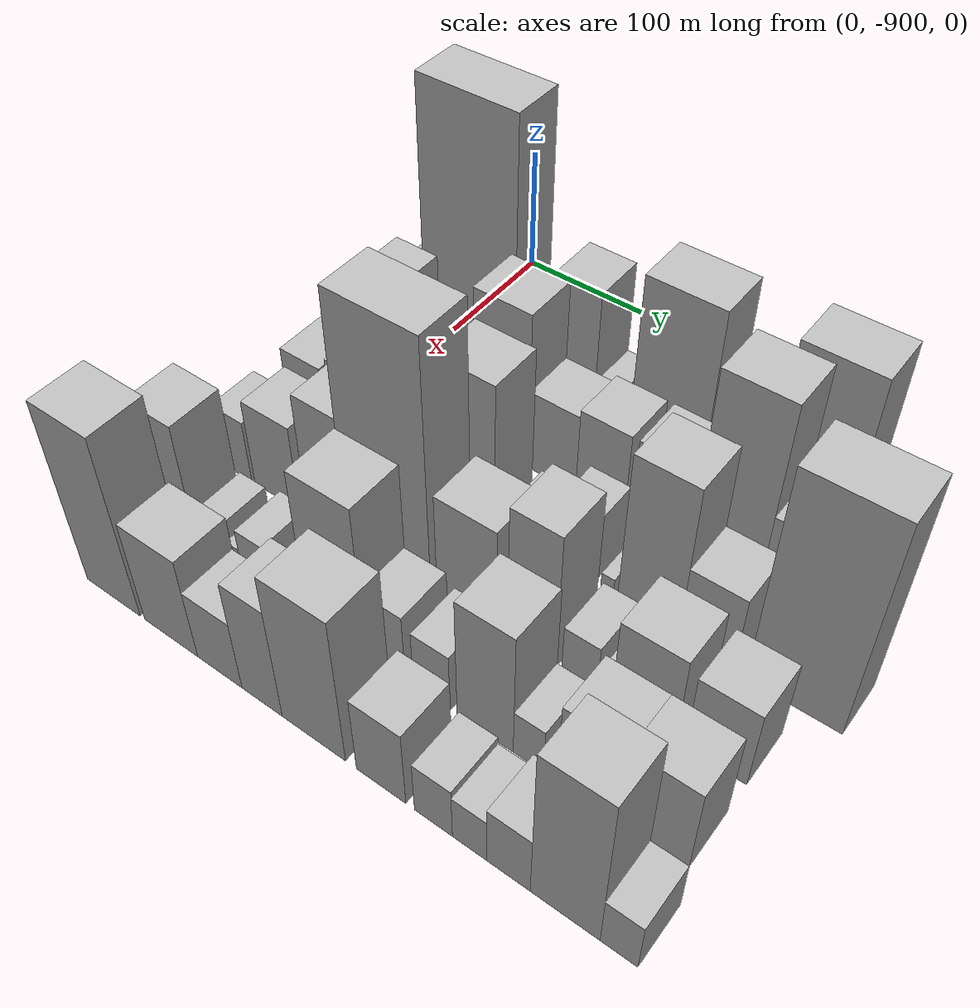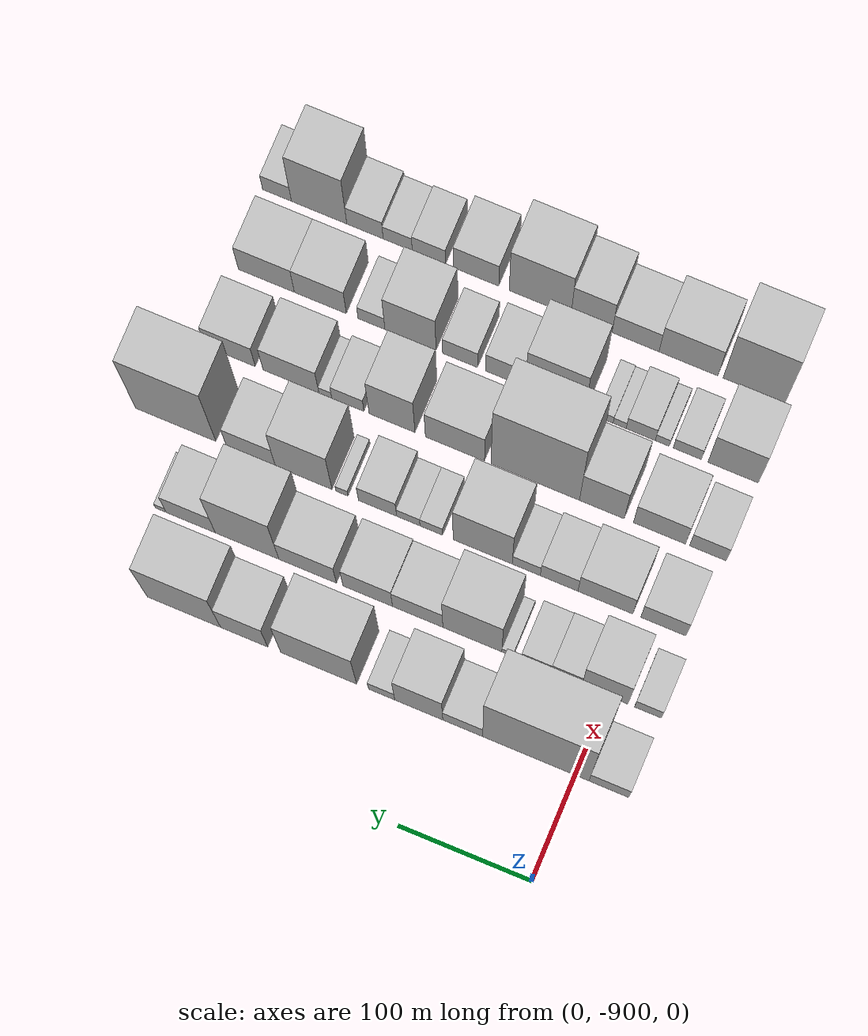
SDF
<sdf version="1.6">
 <world name="default">
  <model name="building_1">
   <static>1</static>
   <pose>100.0000 -924.9908 0 0.000000 0.000000 0.000000</pose>
   <link name="link">
    <pose>0 0 25.50 0 0 0</pose>
    <collision name="collision"><geometry><box><size>40.0000 30.0183 51.0000</size></box></geometry></collision>
    <visual name="visual">
     <cast_shadows>0</cast_shadows>
     <geometry><box><size>40.0000 30.0183 51.0000</size></box></geometry>
     <material>
      <script>
       <uri>model://HANNAS_wall/materials/scripts</uri>
       <uri>model://HANNAS_wall/materials/textures</uri>
       <name>vrc/HANNAS_wall</name>
      </script>
     </material>
    </visual>
   </link>
  </model>
  <model name="building_2">
   <static>1</static>
   <pose>100.0000 -869.9235 0 0.000000 0.000000 0.000000</pose>
   <link name="link">
    <pose>0 0 109.50 0 0 0</pose>
    <collision name="collision"><geometry><box><size>40.0000 80.1163 219.0000</size></box></geometry></collision>
    <visual name="visual">
     <cast_shadows>0</cast_shadows>
     <geometry><box><size>40.0000 80.1163 219.0000</size></box></geometry>
     <material>
      <script>
       <uri>model://HANNAS_wall/materials/scripts</uri>
       <uri>model://HANNAS_wall/materials/textures</uri>
       <name>vrc/HANNAS_wall</name>
      </script>
     </material>
    </visual>
   </link>
  </model>
  <model name="building_3">
   <static>1</static>
   <pose>100.0000 -814.7884 0 0.000000 0.000000 0.000000</pose>
   <link name="link">
    <pose>0 0 25.50 0 0 0</pose>
    <collision name="collision"><geometry><box><size>40.0000 30.1539 51.0000</size></box></geometry></collision>
    <visual name="visual">
     <cast_shadows>0</cast_shadows>
     <geometry><box><size>40.0000 30.1539 51.0000</size></box></geometry>
     <material>
      <script>
       <uri>model://HANNAS_wall/materials/scripts</uri>
       <uri>model://HANNAS_wall/materials/textures</uri>
       <name>vrc/HANNAS_wall</name>
      </script>
     </material>
    </visual>
   </link>
  </model>
  <model name="building_4">
   <static>1</static>
   <pose>100.0000 -781.5374 0 0.000000 0.000000 0.000000</pose>
   <link name="link">
    <pose>0 0 57.00 0 0 0</pose>
    <collision name="collision"><geometry><box><size>40.0000 36.3481 114.0000</size></box></geometry></collision>
    <visual name="visual">
     <cast_shadows>0</cast_shadows>
     <geometry><box><size>40.0000 36.3481 114.0000</size></box></geometry>
     <material>
      <script>
       <uri>model://HANNAS_wall/materials/scripts</uri>
       <uri>model://HANNAS_wall/materials/textures</uri>
       <name>vrc/HANNAS_wall</name>
      </script>
     </material>
    </visual>
   </link>
  </model>
  <model name="building_5">
   <static>1</static>
   <pose>100.0000 -753.4483 0 0.000000 0.000000 0.000000</pose>
   <link name="link">
    <pose>0 0 19.50 0 0 0</pose>
    <collision name="collision"><geometry><box><size>40.0000 19.8302 39.0000</size></box></geometry></collision>
    <visual name="visual">
     <cast_shadows>0</cast_shadows>
     <geometry><box><size>40.0000 19.8302 39.0000</size></box></geometry>
     <material>
      <script>
       <uri>model://HANNAS_wall/materials/scripts</uri>
       <uri>model://HANNAS_wall/materials/textures</uri>
       <name>vrc/HANNAS_wall</name>
      </script>
     </material>
    </visual>
   </link>
  </model>
  <model name="building_6">
   <static>1</static>
   <pose>100.0000 -705.7609 0 0.000000 0.000000 0.000000</pose>
   <link name="link">
    <pose>0 0 72.00 0 0 0</pose>
    <collision name="collision"><geometry><box><size>40.0000 57.5447 144.0000</size></box></geometry></collision>
    <visual name="visual">
     <cast_shadows>0</cast_shadows>
     <geometry><box><size>40.0000 57.5447 144.0000</size></box></geometry>
     <material>
      <script>
       <uri>model://HANNAS_wall/materials/scripts</uri>
       <uri>model://HANNAS_wall/materials/textures</uri>
       <name>vrc/HANNAS_wall</name>
      </script>
     </material>
    </visual>
   </link>
  </model>
  <model name="building_7">
   <static>1</static>
   <pose>100.0000 -649.0936 0 0.000000 0.000000 0.000000</pose>
   <link name="link">
    <pose>0 0 48.00 0 0 0</pose>
    <collision name="collision"><geometry><box><size>40.0000 35.7898 96.0000</size></box></geometry></collision>
    <visual name="visual">
     <cast_shadows>0</cast_shadows>
     <geometry><box><size>40.0000 35.7898 96.0000</size></box></geometry>
     <material>
      <script>
       <uri>model://HANNAS_wall/materials/scripts</uri>
       <uri>model://HANNAS_wall/materials/textures</uri>
       <name>vrc/HANNAS_wall</name>
      </script>
     </material>
    </visual>
   </link>
  </model>
  <model name="building_8">
   <static>1</static>
   <pose>100.0000 -603.2705 0 0.000000 0.000000 0.000000</pose>
   <link name="link">
    <pose>0 0 73.50 0 0 0</pose>
    <collision name="collision"><geometry><box><size>40.0000 55.8565 147.0000</size></box></geometry></collision>
    <visual name="visual">
     <cast_shadows>0</cast_shadows>
     <geometry><box><size>40.0000 55.8565 147.0000</size></box></geometry>
     <material>
      <script>
       <uri>model://HANNAS_wall/materials/scripts</uri>
       <uri>model://HANNAS_wall/materials/textures</uri>
       <name>vrc/HANNAS_wall</name>
      </script>
     </material>
    </visual>
   </link>
  </model>
  <model name="building_54">
   <static>1</static>
   <pose>160.0000 -929.8388 0 0.000000 0.000000 0.000000</pose>
   <link name="link">
    <pose>0 0 19.50 0 0 0</pose>
    <collision name="collision"><geometry><box><size>40.0000 20.3223 39.0000</size></box></geometry></collision>
    <visual name="visual">
     <cast_shadows>0</cast_shadows>
     <geometry><box><size>40.0000 20.3223 39.0000</size></box></geometry>
     <material>
      <script>
       <uri>model://HANNAS_wall/materials/scripts</uri>
       <uri>model://HANNAS_wall/materials/textures</uri>
       <name>vrc/HANNAS_wall</name>
      </script>
     </material>
    </visual>
   </link>
  </model>
  <model name="building_55">
   <static>1</static>
   <pose>160.0000 -897.3813 0 0.000000 0.000000 0.000000</pose>
   <link name="link">
    <pose>0 0 51.00 0 0 0</pose>
    <collision name="collision"><geometry><box><size>40.0000 34.5927 102.0000</size></box></geometry></collision>
    <visual name="visual">
     <cast_shadows>0</cast_shadows>
     <geometry><box><size>40.0000 34.5927 102.0000</size></box></geometry>
     <material>
      <script>
       <uri>model://HANNAS_wall/materials/scripts</uri>
       <uri>model://HANNAS_wall/materials/textures</uri>
       <name>vrc/HANNAS_wall</name>
      </script>
     </material>
    </visual>
   </link>
  </model>
  <model name="building_56">
   <static>1</static>
   <pose>160.0000 -868.4356 0 0.000000 0.000000 0.000000</pose>
   <link name="link">
    <pose>0 0 21.00 0 0 0</pose>
    <collision name="collision"><geometry><box><size>40.0000 23.2988 42.0000</size></box></geometry></collision>
    <visual name="visual">
     <cast_shadows>0</cast_shadows>
     <geometry><box><size>40.0000 23.2988 42.0000</size></box></geometry>
     <material>
      <script>
       <uri>model://HANNAS_wall/materials/scripts</uri>
       <uri>model://HANNAS_wall/materials/textures</uri>
       <name>vrc/HANNAS_wall</name>
      </script>
     </material>
    </visual>
   </link>
  </model>
  <model name="building_57">
   <static>1</static>
   <pose>160.0000 -845.4090 0 0.000000 0.000000 0.000000</pose>
   <link name="link">
    <pose>0 0 19.50 0 0 0</pose>
    <collision name="collision"><geometry><box><size>40.0000 22.7543 39.0000</size></box></geometry></collision>
    <visual name="visual">
     <cast_shadows>0</cast_shadows>
     <geometry><box><size>40.0000 22.7543 39.0000</size></box></geometry>
     <material>
      <script>
       <uri>model://HANNAS_wall/materials/scripts</uri>
       <uri>model://HANNAS_wall/materials/textures</uri>
       <name>vrc/HANNAS_wall</name>
      </script>
     </material>
    </visual>
   </link>
  </model>
  <model name="building_58">
   <static>1</static>
   <pose>160.0000 -823.6726 0 0.000000 0.000000 0.000000</pose>
   <link name="link">
    <pose>0 0 9.00 0 0 0</pose>
    <collision name="collision"><geometry><box><size>40.0000 8.7183 18.0000</size></box></geometry></collision>
    <visual name="visual">
     <cast_shadows>0</cast_shadows>
     <geometry><box><size>40.0000 8.7183 18.0000</size></box></geometry>
     <material>
      <script>
       <uri>model://HANNAS_wall/materials/scripts</uri>
       <uri>model://HANNAS_wall/materials/textures</uri>
       <name>vrc/HANNAS_wall</name>
      </script>
     </material>
    </visual>
   </link>
  </model>
  <model name="building_59">
   <static>1</static>
   <pose>160.0000 -796.9942 0 0.000000 0.000000 0.000000</pose>
   <link name="link">
    <pose>0 0 66.00 0 0 0</pose>
    <collision name="collision"><geometry><box><size>40.0000 44.6387 132.0000</size></box></geometry></collision>
    <visual name="visual">
     <cast_shadows>0</cast_shadows>
     <geometry><box><size>40.0000 44.6387 132.0000</size></box></geometry>
     <material>
      <script>
       <uri>model://HANNAS_wall/materials/scripts</uri>
       <uri>model://HANNAS_wall/materials/textures</uri>
       <name>vrc/HANNAS_wall</name>
      </script>
     </material>
    </visual>
   </link>
  </model>
  <model name="building_60">
   <static>1</static>
   <pose>160.0000 -755.5623 0 0.000000 0.000000 0.000000</pose>
   <link name="link">
    <pose>0 0 34.50 0 0 0</pose>
    <collision name="collision"><geometry><box><size>40.0000 38.2251 69.0000</size></box></geometry></collision>
    <visual name="visual">
     <cast_shadows>0</cast_shadows>
     <geometry><box><size>40.0000 38.2251 69.0000</size></box></geometry>
     <material>
      <script>
       <uri>model://HANNAS_wall/materials/scripts</uri>
       <uri>model://HANNAS_wall/materials/textures</uri>
       <name>vrc/HANNAS_wall</name>
      </script>
     </material>
    </visual>
   </link>
  </model>
  <model name="building_61">
   <static>1</static>
   <pose>160.0000 -717.5969 0 0.000000 0.000000 0.000000</pose>
   <link name="link">
    <pose>0 0 37.50 0 0 0</pose>
    <collision name="collision"><geometry><box><size>40.0000 37.7058 75.0000</size></box></geometry></collision>
    <visual name="visual">
     <cast_shadows>0</cast_shadows>
     <geometry><box><size>40.0000 37.7058 75.0000</size></box></geometry>
     <material>
      <script>
       <uri>model://HANNAS_wall/materials/scripts</uri>
       <uri>model://HANNAS_wall/materials/textures</uri>
       <name>vrc/HANNAS_wall</name>
      </script>
     </material>
    </visual>
   </link>
  </model>
  <model name="building_62">
   <static>1</static>
   <pose>160.0000 -671.8266 0 0.000000 0.000000 0.000000</pose>
   <link name="link">
    <pose>0 0 37.50 0 0 0</pose>
    <collision name="collision"><geometry><box><size>40.0000 43.8346 75.0000</size></box></geometry></collision>
    <visual name="visual">
     <cast_shadows>0</cast_shadows>
     <geometry><box><size>40.0000 43.8346 75.0000</size></box></geometry>
     <material>
      <script>
       <uri>model://HANNAS_wall/materials/scripts</uri>
       <uri>model://HANNAS_wall/materials/textures</uri>
       <name>vrc/HANNAS_wall</name>
      </script>
     </material>
    </visual>
   </link>
  </model>
  <model name="building_63">
   <static>1</static>
   <pose>160.0000 -625.6068 0 0.000000 0.000000 0.000000</pose>
   <link name="link">
    <pose>0 0 79.50 0 0 0</pose>
    <collision name="collision"><geometry><box><size>40.0000 48.6050 159.0000</size></box></geometry></collision>
    <visual name="visual">
     <cast_shadows>0</cast_shadows>
     <geometry><box><size>40.0000 48.6050 159.0000</size></box></geometry>
     <material>
      <script>
       <uri>model://HANNAS_wall/materials/scripts</uri>
       <uri>model://HANNAS_wall/materials/textures</uri>
       <name>vrc/HANNAS_wall</name>
      </script>
     </material>
    </visual>
   </link>
  </model>
  <model name="building_64">
   <static>1</static>
   <pose>160.0000 -582.5102 0 0.000000 0.000000 0.000000</pose>
   <link name="link">
    <pose>0 0 34.50 0 0 0</pose>
    <collision name="collision"><geometry><box><size>40.0000 37.5884 69.0000</size></box></geometry></collision>
    <visual name="visual">
     <cast_shadows>0</cast_shadows>
     <geometry><box><size>40.0000 37.5884 69.0000</size></box></geometry>
     <material>
      <script>
       <uri>model://HANNAS_wall/materials/scripts</uri>
       <uri>model://HANNAS_wall/materials/textures</uri>
       <name>vrc/HANNAS_wall</name>
      </script>
     </material>
    </visual>
   </link>
  </model>
  <model name="building_65">
   <static>1</static>
   <pose>160.0000 -559.5824 0 0.000000 0.000000 0.000000</pose>
   <link name="link">
    <pose>0 0 9.00 0 0 0</pose>
    <collision name="collision"><geometry><box><size>40.0000 8.2672 18.0000</size></box></geometry></collision>
    <visual name="visual">
     <cast_shadows>0</cast_shadows>
     <geometry><box><size>40.0000 8.2672 18.0000</size></box></geometry>
     <material>
      <script>
       <uri>model://HANNAS_wall/materials/scripts</uri>
       <uri>model://HANNAS_wall/materials/textures</uri>
       <name>vrc/HANNAS_wall</name>
      </script>
     </material>
    </visual>
   </link>
  </model>
  <model name="building_112">
   <static>1</static>
   <pose>220.0000 -916.9110 0 0.000000 0.000000 0.000000</pose>
   <link name="link">
    <pose>0 0 31.50 0 0 0</pose>
    <collision name="collision"><geometry><box><size>40.0000 34.1780 63.0000</size></box></geometry></collision>
    <visual name="visual">
     <cast_shadows>0</cast_shadows>
     <geometry><box><size>40.0000 34.1780 63.0000</size></box></geometry>
     <material>
      <script>
       <uri>model://HANNAS_wall/materials/scripts</uri>
       <uri>model://HANNAS_wall/materials/textures</uri>
       <name>vrc/HANNAS_wall</name>
      </script>
     </material>
    </visual>
   </link>
  </model>
  <model name="building_113">
   <static>1</static>
   <pose>220.0000 -873.0123 0 0.000000 0.000000 0.000000</pose>
   <link name="link">
    <pose>0 0 37.50 0 0 0</pose>
    <collision name="collision"><geometry><box><size>40.0000 41.6195 75.0000</size></box></geometry></collision>
    <visual name="visual">
     <cast_shadows>0</cast_shadows>
     <geometry><box><size>40.0000 41.6195 75.0000</size></box></geometry>
     <material>
      <script>
       <uri>model://HANNAS_wall/materials/scripts</uri>
       <uri>model://HANNAS_wall/materials/textures</uri>
       <name>vrc/HANNAS_wall</name>
      </script>
     </material>
    </visual>
   </link>
  </model>
  <model name="building_114">
   <static>1</static>
   <pose>220.0000 -837.9115 0 0.000000 0.000000 0.000000</pose>
   <link name="link">
    <pose>0 0 27.00 0 0 0</pose>
    <collision name="collision"><geometry><box><size>40.0000 28.5822 54.0000</size></box></geometry></collision>
    <visual name="visual">
     <cast_shadows>0</cast_shadows>
     <geometry><box><size>40.0000 28.5822 54.0000</size></box></geometry>
     <material>
      <script>
       <uri>model://HANNAS_wall/materials/scripts</uri>
       <uri>model://HANNAS_wall/materials/textures</uri>
       <name>vrc/HANNAS_wall</name>
      </script>
     </material>
    </visual>
   </link>
  </model>
  <model name="building_115">
   <static>1</static>
   <pose>220.0000 -812.9267 0 0.000000 0.000000 0.000000</pose>
   <link name="link">
    <pose>0 0 19.50 0 0 0</pose>
    <collision name="collision"><geometry><box><size>40.0000 21.3874 39.0000</size></box></geometry></collision>
    <visual name="visual">
     <cast_shadows>0</cast_shadows>
     <geometry><box><size>40.0000 21.3874 39.0000</size></box></geometry>
     <material>
      <script>
       <uri>model://HANNAS_wall/materials/scripts</uri>
       <uri>model://HANNAS_wall/materials/textures</uri>
       <name>vrc/HANNAS_wall</name>
      </script>
     </material>
    </visual>
   </link>
  </model>
  <model name="building_116">
   <static>1</static>
   <pose>220.0000 -779.8000 0 0.000000 0.000000 0.000000</pose>
   <link name="link">
    <pose>0 0 64.50 0 0 0</pose>
    <collision name="collision"><geometry><box><size>40.0000 44.8660 129.0000</size></box></geometry></collision>
    <visual name="visual">
     <cast_shadows>0</cast_shadows>
     <geometry><box><size>40.0000 44.8660 129.0000</size></box></geometry>
     <material>
      <script>
       <uri>model://HANNAS_wall/materials/scripts</uri>
       <uri>model://HANNAS_wall/materials/textures</uri>
       <name>vrc/HANNAS_wall</name>
      </script>
     </material>
    </visual>
   </link>
  </model>
  <model name="building_117">
   <static>1</static>
   <pose>220.0000 -740.7072 0 0.000000 0.000000 0.000000</pose>
   <link name="link">
    <pose>0 0 15.00 0 0 0</pose>
    <collision name="collision"><geometry><box><size>40.0000 17.3196 30.0000</size></box></geometry></collision>
    <visual name="visual">
     <cast_shadows>0</cast_shadows>
     <geometry><box><size>40.0000 17.3196 30.0000</size></box></geometry>
     <material>
      <script>
       <uri>model://HANNAS_wall/materials/scripts</uri>
       <uri>model://HANNAS_wall/materials/textures</uri>
       <name>vrc/HANNAS_wall</name>
      </script>
     </material>
    </visual>
   </link>
  </model>
  <model name="building_118">
   <static>1</static>
   <pose>220.0000 -723.1282 0 0.000000 0.000000 0.000000</pose>
   <link name="link">
    <pose>0 0 15.00 0 0 0</pose>
    <collision name="collision"><geometry><box><size>40.0000 17.8385 30.0000</size></box></geometry></collision>
    <visual name="visual">
     <cast_shadows>0</cast_shadows>
     <geometry><box><size>40.0000 17.8385 30.0000</size></box></geometry>
     <material>
      <script>
       <uri>model://HANNAS_wall/materials/scripts</uri>
       <uri>model://HANNAS_wall/materials/textures</uri>
       <name>vrc/HANNAS_wall</name>
      </script>
     </material>
    </visual>
   </link>
  </model>
  <model name="building_119">
   <static>1</static>
   <pose>220.0000 -699.6803 0 0.000000 0.000000 0.000000</pose>
   <link name="link">
    <pose>0 0 28.50 0 0 0</pose>
    <collision name="collision"><geometry><box><size>40.0000 29.0573 57.0000</size></box></geometry></collision>
    <visual name="visual">
     <cast_shadows>0</cast_shadows>
     <geometry><box><size>40.0000 29.0573 57.0000</size></box></geometry>
     <material>
      <script>
       <uri>model://HANNAS_wall/materials/scripts</uri>
       <uri>model://HANNAS_wall/materials/textures</uri>
       <name>vrc/HANNAS_wall</name>
      </script>
     </material>
    </visual>
   </link>
  </model>
  <model name="building_120">
   <static>1</static>
   <pose>220.0000 -672.5406 0 0.000000 0.000000 0.000000</pose>
   <link name="link">
    <pose>0 0 10.50 0 0 0</pose>
    <collision name="collision"><geometry><box><size>40.0000 9.2219 21.0000</size></box></geometry></collision>
    <visual name="visual">
     <cast_shadows>0</cast_shadows>
     <geometry><box><size>40.0000 9.2219 21.0000</size></box></geometry>
     <material>
      <script>
       <uri>model://HANNAS_wall/materials/scripts</uri>
       <uri>model://HANNAS_wall/materials/textures</uri>
       <name>vrc/HANNAS_wall</name>
      </script>
     </material>
    </visual>
   </link>
  </model>
  <model name="building_121">
   <static>1</static>
   <pose>220.0000 -643.2324 0 0.000000 0.000000 0.000000</pose>
   <link name="link">
    <pose>0 0 66.00 0 0 0</pose>
    <collision name="collision"><geometry><box><size>40.0000 43.3946 132.0000</size></box></geometry></collision>
    <visual name="visual">
     <cast_shadows>0</cast_shadows>
     <geometry><box><size>40.0000 43.3946 132.0000</size></box></geometry>
     <material>
      <script>
       <uri>model://HANNAS_wall/materials/scripts</uri>
       <uri>model://HANNAS_wall/materials/textures</uri>
       <name>vrc/HANNAS_wall</name>
      </script>
     </material>
    </visual>
   </link>
  </model>
  <model name="building_122">
   <static>1</static>
   <pose>220.0000 -602.7702 0 0.000000 0.000000 0.000000</pose>
   <link name="link">
    <pose>0 0 33.00 0 0 0</pose>
    <collision name="collision"><geometry><box><size>40.0000 37.5297 66.0000</size></box></geometry></collision>
    <visual name="visual">
     <cast_shadows>0</cast_shadows>
     <geometry><box><size>40.0000 37.5297 66.0000</size></box></geometry>
     <material>
      <script>
       <uri>model://HANNAS_wall/materials/scripts</uri>
       <uri>model://HANNAS_wall/materials/textures</uri>
       <name>vrc/HANNAS_wall</name>
      </script>
     </material>
    </visual>
   </link>
  </model>
  <model name="building_123">
   <static>1</static>
   <pose>220.0000 -545.2214 0 0.000000 0.000000 0.000000</pose>
   <link name="link">
    <pose>0 0 90.00 0 0 0</pose>
    <collision name="collision"><geometry><box><size>40.0000 61.5678 180.0000</size></box></geometry></collision>
    <visual name="visual">
     <cast_shadows>0</cast_shadows>
     <geometry><box><size>40.0000 61.5678 180.0000</size></box></geometry>
     <material>
      <script>
       <uri>model://HANNAS_wall/materials/scripts</uri>
       <uri>model://HANNAS_wall/materials/textures</uri>
       <name>vrc/HANNAS_wall</name>
      </script>
     </material>
    </visual>
   </link>
  </model>
  <model name="building_164">
   <static>1</static>
   <pose>280.0000 -926.0787 0 0.000000 0.000000 0.000000</pose>
   <link name="link">
    <pose>0 0 27.00 0 0 0</pose>
    <collision name="collision"><geometry><box><size>40.0000 27.8426 54.0000</size></box></geometry></collision>
    <visual name="visual">
     <cast_shadows>0</cast_shadows>
     <geometry><box><size>40.0000 27.8426 54.0000</size></box></geometry>
     <material>
      <script>
       <uri>model://HANNAS_wall/materials/scripts</uri>
       <uri>model://HANNAS_wall/materials/textures</uri>
       <name>vrc/HANNAS_wall</name>
      </script>
     </material>
    </visual>
   </link>
  </model>
  <model name="building_165">
   <static>1</static>
   <pose>280.0000 -889.3835 0 0.000000 0.000000 0.000000</pose>
   <link name="link">
    <pose>0 0 37.50 0 0 0</pose>
    <collision name="collision"><geometry><box><size>40.0000 39.5478 75.0000</size></box></geometry></collision>
    <visual name="visual">
     <cast_shadows>0</cast_shadows>
     <geometry><box><size>40.0000 39.5478 75.0000</size></box></geometry>
     <material>
      <script>
       <uri>model://HANNAS_wall/materials/scripts</uri>
       <uri>model://HANNAS_wall/materials/textures</uri>
       <name>vrc/HANNAS_wall</name>
      </script>
     </material>
    </visual>
   </link>
  </model>
  <model name="building_166">
   <static>1</static>
   <pose>280.0000 -845.5634 0 0.000000 0.000000 0.000000</pose>
   <link name="link">
    <pose>0 0 54.00 0 0 0</pose>
    <collision name="collision"><geometry><box><size>40.0000 34.0923 108.0000</size></box></geometry></collision>
    <visual name="visual">
     <cast_shadows>0</cast_shadows>
     <geometry><box><size>40.0000 34.0923 108.0000</size></box></geometry>
     <material>
      <script>
       <uri>model://HANNAS_wall/materials/scripts</uri>
       <uri>model://HANNAS_wall/materials/textures</uri>
       <name>vrc/HANNAS_wall</name>
      </script>
     </material>
    </visual>
   </link>
  </model>
  <model name="building_167">
   <static>1</static>
   <pose>280.0000 -794.8263 0 0.000000 0.000000 0.000000</pose>
   <link name="link">
    <pose>0 0 103.50 0 0 0</pose>
    <collision name="collision"><geometry><box><size>40.0000 67.3820 207.0000</size></box></geometry></collision>
    <visual name="visual">
     <cast_shadows>0</cast_shadows>
     <geometry><box><size>40.0000 67.3820 207.0000</size></box></geometry>
     <material>
      <script>
       <uri>model://HANNAS_wall/materials/scripts</uri>
       <uri>model://HANNAS_wall/materials/textures</uri>
       <name>vrc/HANNAS_wall</name>
      </script>
     </material>
    </visual>
   </link>
  </model>
  <model name="building_168">
   <static>1</static>
   <pose>280.0000 -733.5885 0 0.000000 0.000000 0.000000</pose>
   <link name="link">
    <pose>0 0 45.00 0 0 0</pose>
    <collision name="collision"><geometry><box><size>40.0000 45.0935 90.0000</size></box></geometry></collision>
    <visual name="visual">
     <cast_shadows>0</cast_shadows>
     <geometry><box><size>40.0000 45.0935 90.0000</size></box></geometry>
     <material>
      <script>
       <uri>model://HANNAS_wall/materials/scripts</uri>
       <uri>model://HANNAS_wall/materials/textures</uri>
       <name>vrc/HANNAS_wall</name>
      </script>
     </material>
    </visual>
   </link>
  </model>
  <model name="building_169">
   <static>1</static>
   <pose>280.0000 -685.4899 0 0.000000 0.000000 0.000000</pose>
   <link name="link">
    <pose>0 0 58.50 0 0 0</pose>
    <collision name="collision"><geometry><box><size>40.0000 35.1037 117.0000</size></box></geometry></collision>
    <visual name="visual">
     <cast_shadows>0</cast_shadows>
     <geometry><box><size>40.0000 35.1037 117.0000</size></box></geometry>
     <material>
      <script>
       <uri>model://HANNAS_wall/materials/scripts</uri>
       <uri>model://HANNAS_wall/materials/textures</uri>
       <name>vrc/HANNAS_wall</name>
      </script>
     </material>
    </visual>
   </link>
  </model>
  <model name="building_170">
   <static>1</static>
   <pose>280.0000 -651.6046 0 0.000000 0.000000 0.000000</pose>
   <link name="link">
    <pose>0 0 21.00 0 0 0</pose>
    <collision name="collision"><geometry><box><size>40.0000 24.6669 42.0000</size></box></geometry></collision>
    <visual name="visual">
     <cast_shadows>0</cast_shadows>
     <geometry><box><size>40.0000 24.6669 42.0000</size></box></geometry>
     <material>
      <script>
       <uri>model://HANNAS_wall/materials/scripts</uri>
       <uri>model://HANNAS_wall/materials/textures</uri>
       <name>vrc/HANNAS_wall</name>
      </script>
     </material>
    </visual>
   </link>
  </model>
  <model name="building_171">
   <static>1</static>
   <pose>280.0000 -634.3228 0 0.000000 0.000000 0.000000</pose>
   <link name="link">
    <pose>0 0 10.50 0 0 0</pose>
    <collision name="collision"><geometry><box><size>40.0000 9.8966 21.0000</size></box></geometry></collision>
    <visual name="visual">
     <cast_shadows>0</cast_shadows>
     <geometry><box><size>40.0000 9.8966 21.0000</size></box></geometry>
     <material>
      <script>
       <uri>model://HANNAS_wall/materials/scripts</uri>
       <uri>model://HANNAS_wall/materials/textures</uri>
       <name>vrc/HANNAS_wall</name>
      </script>
     </material>
    </visual>
   </link>
  </model>
  <model name="building_172">
   <static>1</static>
   <pose>280.0000 -607.9506 0 0.000000 0.000000 0.000000</pose>
   <link name="link">
    <pose>0 0 37.50 0 0 0</pose>
    <collision name="collision"><geometry><box><size>40.0000 42.8477 75.0000</size></box></geometry></collision>
    <visual name="visual">
     <cast_shadows>0</cast_shadows>
     <geometry><box><size>40.0000 42.8477 75.0000</size></box></geometry>
     <material>
      <script>
       <uri>model://HANNAS_wall/materials/scripts</uri>
       <uri>model://HANNAS_wall/materials/textures</uri>
       <name>vrc/HANNAS_wall</name>
      </script>
     </material>
    </visual>
   </link>
  </model>
  <model name="building_173">
   <static>1</static>
   <pose>280.0000 -561.0938 0 0.000000 0.000000 0.000000</pose>
   <link name="link">
    <pose>0 0 33.00 0 0 0</pose>
    <collision name="collision"><geometry><box><size>40.0000 38.8661 66.0000</size></box></geometry></collision>
    <visual name="visual">
     <cast_shadows>0</cast_shadows>
     <geometry><box><size>40.0000 38.8661 66.0000</size></box></geometry>
     <material>
      <script>
       <uri>model://HANNAS_wall/materials/scripts</uri>
       <uri>model://HANNAS_wall/materials/textures</uri>
       <name>vrc/HANNAS_wall</name>
      </script>
     </material>
    </visual>
   </link>
  </model>
  <model name="building_218">
   <static>1</static>
   <pose>340.0000 -920.8637 0 0.000000 0.000000 0.000000</pose>
   <link name="link">
    <pose>0 0 52.50 0 0 0</pose>
    <collision name="collision"><geometry><box><size>40.0000 38.2726 105.0000</size></box></geometry></collision>
    <visual name="visual">
     <cast_shadows>0</cast_shadows>
     <geometry><box><size>40.0000 38.2726 105.0000</size></box></geometry>
     <material>
      <script>
       <uri>model://HANNAS_wall/materials/scripts</uri>
       <uri>model://HANNAS_wall/materials/textures</uri>
       <name>vrc/HANNAS_wall</name>
      </script>
     </material>
    </visual>
   </link>
  </model>
  <model name="building_219">
   <static>1</static>
   <pose>340.0000 -886.0160 0 0.000000 0.000000 0.000000</pose>
   <link name="link">
    <pose>0 0 18.00 0 0 0</pose>
    <collision name="collision"><geometry><box><size>40.0000 21.4227 36.0000</size></box></geometry></collision>
    <visual name="visual">
     <cast_shadows>0</cast_shadows>
     <geometry><box><size>40.0000 21.4227 36.0000</size></box></geometry>
     <material>
      <script>
       <uri>model://HANNAS_wall/materials/scripts</uri>
       <uri>model://HANNAS_wall/materials/textures</uri>
       <name>vrc/HANNAS_wall</name>
      </script>
     </material>
    </visual>
   </link>
  </model>
  <model name="building_220">
   <static>1</static>
   <pose>340.0000 -866.9790 0 0.000000 0.000000 0.000000</pose>
   <link name="link">
    <pose>0 0 12.00 0 0 0</pose>
    <collision name="collision"><geometry><box><size>40.0000 10.6514 24.0000</size></box></geometry></collision>
    <visual name="visual">
     <cast_shadows>0</cast_shadows>
     <geometry><box><size>40.0000 10.6514 24.0000</size></box></geometry>
     <material>
      <script>
       <uri>model://HANNAS_wall/materials/scripts</uri>
       <uri>model://HANNAS_wall/materials/textures</uri>
       <name>vrc/HANNAS_wall</name>
      </script>
     </material>
    </visual>
   </link>
  </model>
  <model name="building_221">
   <static>1</static>
   <pose>340.0000 -850.5285 0 0.000000 0.000000 0.000000</pose>
   <link name="link">
    <pose>0 0 21.00 0 0 0</pose>
    <collision name="collision"><geometry><box><size>40.0000 22.2496 42.0000</size></box></geometry></collision>
    <visual name="visual">
     <cast_shadows>0</cast_shadows>
     <geometry><box><size>40.0000 22.2496 42.0000</size></box></geometry>
     <material>
      <script>
       <uri>model://HANNAS_wall/materials/scripts</uri>
       <uri>model://HANNAS_wall/materials/textures</uri>
       <name>vrc/HANNAS_wall</name>
      </script>
     </material>
    </visual>
   </link>
  </model>
  <model name="building_222">
   <static>1</static>
   <pose>340.0000 -834.4311 0 0.000000 0.000000 0.000000</pose>
   <link name="link">
    <pose>0 0 10.50 0 0 0</pose>
    <collision name="collision"><geometry><box><size>40.0000 9.9454 21.0000</size></box></geometry></collision>
    <visual name="visual">
     <cast_shadows>0</cast_shadows>
     <geometry><box><size>40.0000 9.9454 21.0000</size></box></geometry>
     <material>
      <script>
       <uri>model://HANNAS_wall/materials/scripts</uri>
       <uri>model://HANNAS_wall/materials/textures</uri>
       <name>vrc/HANNAS_wall</name>
      </script>
     </material>
    </visual>
   </link>
  </model>
  <model name="building_223">
   <static>1</static>
   <pose>340.0000 -823.7632 0 0.000000 0.000000 0.000000</pose>
   <link name="link">
    <pose>0 0 12.00 0 0 0</pose>
    <collision name="collision"><geometry><box><size>40.0000 11.3904 24.0000</size></box></geometry></collision>
    <visual name="visual">
     <cast_shadows>0</cast_shadows>
     <geometry><box><size>40.0000 11.3904 24.0000</size></box></geometry>
     <material>
      <script>
       <uri>model://HANNAS_wall/materials/scripts</uri>
       <uri>model://HANNAS_wall/materials/textures</uri>
       <name>vrc/HANNAS_wall</name>
      </script>
     </material>
    </visual>
   </link>
  </model>
  <model name="building_224">
   <static>1</static>
   <pose>340.0000 -785.1793 0 0.000000 0.000000 0.000000</pose>
   <link name="link">
    <pose>0 0 64.50 0 0 0</pose>
    <collision name="collision"><geometry><box><size>40.0000 45.7774 129.0000</size></box></geometry></collision>
    <visual name="visual">
     <cast_shadows>0</cast_shadows>
     <geometry><box><size>40.0000 45.7774 129.0000</size></box></geometry>
     <material>
      <script>
       <uri>model://HANNAS_wall/materials/scripts</uri>
       <uri>model://HANNAS_wall/materials/textures</uri>
       <name>vrc/HANNAS_wall</name>
      </script>
     </material>
    </visual>
   </link>
  </model>
  <model name="building_225">
   <static>1</static>
   <pose>340.0000 -747.0316 0 0.000000 0.000000 0.000000</pose>
   <link name="link">
    <pose>0 0 30.00 0 0 0</pose>
    <collision name="collision"><geometry><box><size>40.0000 30.5181 60.0000</size></box></geometry></collision>
    <visual name="visual">
     <cast_shadows>0</cast_shadows>
     <geometry><box><size>40.0000 30.5181 60.0000</size></box></geometry>
     <material>
      <script>
       <uri>model://HANNAS_wall/materials/scripts</uri>
       <uri>model://HANNAS_wall/materials/textures</uri>
       <name>vrc/HANNAS_wall</name>
      </script>
     </material>
    </visual>
   </link>
  </model>
  <model name="building_226">
   <static>1</static>
   <pose>340.0000 -712.4114 0 0.000000 0.000000 0.000000</pose>
   <link name="link">
    <pose>0 0 25.50 0 0 0</pose>
    <collision name="collision"><geometry><box><size>40.0000 26.7223 51.0000</size></box></geometry></collision>
    <visual name="visual">
     <cast_shadows>0</cast_shadows>
     <geometry><box><size>40.0000 26.7223 51.0000</size></box></geometry>
     <material>
      <script>
       <uri>model://HANNAS_wall/materials/scripts</uri>
       <uri>model://HANNAS_wall/materials/textures</uri>
       <name>vrc/HANNAS_wall</name>
      </script>
     </material>
    </visual>
   </link>
  </model>
  <model name="building_227">
   <static>1</static>
   <pose>340.0000 -674.3897 0 0.000000 0.000000 0.000000</pose>
   <link name="link">
    <pose>0 0 52.50 0 0 0</pose>
    <collision name="collision"><geometry><box><size>40.0000 39.3212 105.0000</size></box></geometry></collision>
    <visual name="visual">
     <cast_shadows>0</cast_shadows>
     <geometry><box><size>40.0000 39.3212 105.0000</size></box></geometry>
     <material>
      <script>
       <uri>model://HANNAS_wall/materials/scripts</uri>
       <uri>model://HANNAS_wall/materials/textures</uri>
       <name>vrc/HANNAS_wall</name>
      </script>
     </material>
    </visual>
   </link>
  </model>
  <model name="building_228">
   <static>1</static>
   <pose>340.0000 -644.3931 0 0.000000 0.000000 0.000000</pose>
   <link name="link">
    <pose>0 0 19.50 0 0 0</pose>
    <collision name="collision"><geometry><box><size>40.0000 20.6721 39.0000</size></box></geometry></collision>
    <visual name="visual">
     <cast_shadows>0</cast_shadows>
     <geometry><box><size>40.0000 20.6721 39.0000</size></box></geometry>
     <material>
      <script>
       <uri>model://HANNAS_wall/materials/scripts</uri>
       <uri>model://HANNAS_wall/materials/textures</uri>
       <name>vrc/HANNAS_wall</name>
      </script>
     </material>
    </visual>
   </link>
  </model>
  <model name="building_229">
   <static>1</static>
   <pose>340.0000 -605.0388 0 0.000000 0.000000 0.000000</pose>
   <link name="link">
    <pose>0 0 36.00 0 0 0</pose>
    <collision name="collision"><geometry><box><size>40.0000 40.0364 72.0000</size></box></geometry></collision>
    <visual name="visual">
     <cast_shadows>0</cast_shadows>
     <geometry><box><size>40.0000 40.0364 72.0000</size></box></geometry>
     <material>
      <script>
       <uri>model://HANNAS_wall/materials/scripts</uri>
       <uri>model://HANNAS_wall/materials/textures</uri>
       <name>vrc/HANNAS_wall</name>
      </script>
     </material>
    </visual>
   </link>
  </model>
  <model name="building_230">
   <static>1</static>
   <pose>340.0000 -563.4427 0 0.000000 0.000000 0.000000</pose>
   <link name="link">
    <pose>0 0 36.00 0 0 0</pose>
    <collision name="collision"><geometry><box><size>40.0000 43.1556 72.0000</size></box></geometry></collision>
    <visual name="visual">
     <cast_shadows>0</cast_shadows>
     <geometry><box><size>40.0000 43.1556 72.0000</size></box></geometry>
     <material>
      <script>
       <uri>model://HANNAS_wall/materials/scripts</uri>
       <uri>model://HANNAS_wall/materials/textures</uri>
       <name>vrc/HANNAS_wall</name>
      </script>
     </material>
    </visual>
   </link>
  </model>
  <model name="building_277">
   <static>1</static>
   <pose>400.0000 -912.4508 0 0.000000 0.000000 0.000000</pose>
   <link name="link">
    <pose>0 0 76.50 0 0 0</pose>
    <collision name="collision"><geometry><box><size>40.0000 47.0984 153.0000</size></box></geometry></collision>
    <visual name="visual">
     <cast_shadows>0</cast_shadows>
     <geometry><box><size>40.0000 47.0984 153.0000</size></box></geometry>
     <material>
      <script>
       <uri>model://HANNAS_wall/materials/scripts</uri>
       <uri>model://HANNAS_wall/materials/textures</uri>
       <name>vrc/HANNAS_wall</name>
      </script>
     </material>
    </visual>
   </link>
  </model>
  <model name="building_278">
   <static>1</static>
   <pose>400.0000 -862.4179 0 0.000000 0.000000 0.000000</pose>
   <link name="link">
    <pose>0 0 43.50 0 0 0</pose>
    <collision name="collision"><geometry><box><size>40.0000 44.9674 87.0000</size></box></geometry></collision>
    <visual name="visual">
     <cast_shadows>0</cast_shadows>
     <geometry><box><size>40.0000 44.9674 87.0000</size></box></geometry>
     <material>
      <script>
       <uri>model://HANNAS_wall/materials/scripts</uri>
       <uri>model://HANNAS_wall/materials/textures</uri>
       <name>vrc/HANNAS_wall</name>
      </script>
     </material>
    </visual>
   </link>
  </model>
  <model name="building_279">
   <static>1</static>
   <pose>400.0000 -821.9537 0 0.000000 0.000000 0.000000</pose>
   <link name="link">
    <pose>0 0 30.00 0 0 0</pose>
    <collision name="collision"><geometry><box><size>40.0000 35.9609 60.0000</size></box></geometry></collision>
    <visual name="visual">
     <cast_shadows>0</cast_shadows>
     <geometry><box><size>40.0000 35.9609 60.0000</size></box></geometry>
     <material>
      <script>
       <uri>model://HANNAS_wall/materials/scripts</uri>
       <uri>model://HANNAS_wall/materials/textures</uri>
       <name>vrc/HANNAS_wall</name>
      </script>
     </material>
    </visual>
   </link>
  </model>
  <model name="building_280">
   <static>1</static>
   <pose>400.0000 -788.1976 0 0.000000 0.000000 0.000000</pose>
   <link name="link">
    <pose>0 0 48.00 0 0 0</pose>
    <collision name="collision"><geometry><box><size>40.0000 31.5512 96.0000</size></box></geometry></collision>
    <visual name="visual">
     <cast_shadows>0</cast_shadows>
     <geometry><box><size>40.0000 31.5512 96.0000</size></box></geometry>
     <material>
      <script>
       <uri>model://HANNAS_wall/materials/scripts</uri>
       <uri>model://HANNAS_wall/materials/textures</uri>
       <name>vrc/HANNAS_wall</name>
      </script>
     </material>
    </visual>
   </link>
  </model>
  <model name="building_281">
   <static>1</static>
   <pose>400.0000 -748.7419 0 0.000000 0.000000 0.000000</pose>
   <link name="link">
    <pose>0 0 63.00 0 0 0</pose>
    <collision name="collision"><geometry><box><size>40.0000 47.3602 126.0000</size></box></geometry></collision>
    <visual name="visual">
     <cast_shadows>0</cast_shadows>
     <geometry><box><size>40.0000 47.3602 126.0000</size></box></geometry>
     <material>
      <script>
       <uri>model://HANNAS_wall/materials/scripts</uri>
       <uri>model://HANNAS_wall/materials/textures</uri>
       <name>vrc/HANNAS_wall</name>
      </script>
     </material>
    </visual>
   </link>
  </model>
  <model name="building_282">
   <static>1</static>
   <pose>400.0000 -699.5945 0 0.000000 0.000000 0.000000</pose>
   <link name="link">
    <pose>0 0 33.00 0 0 0</pose>
    <collision name="collision"><geometry><box><size>40.0000 34.9347 66.0000</size></box></geometry></collision>
    <visual name="visual">
     <cast_shadows>0</cast_shadows>
     <geometry><box><size>40.0000 34.9347 66.0000</size></box></geometry>
     <material>
      <script>
       <uri>model://HANNAS_wall/materials/scripts</uri>
       <uri>model://HANNAS_wall/materials/textures</uri>
       <name>vrc/HANNAS_wall</name>
      </script>
     </material>
    </visual>
   </link>
  </model>
  <model name="building_283">
   <static>1</static>
   <pose>400.0000 -663.2770 0 0.000000 0.000000 0.000000</pose>
   <link name="link">
    <pose>0 0 22.50 0 0 0</pose>
    <collision name="collision"><geometry><box><size>40.0000 25.7004 45.0000</size></box></geometry></collision>
    <visual name="visual">
     <cast_shadows>0</cast_shadows>
     <geometry><box><size>40.0000 25.7004 45.0000</size></box></geometry>
     <material>
      <script>
       <uri>model://HANNAS_wall/materials/scripts</uri>
       <uri>model://HANNAS_wall/materials/textures</uri>
       <name>vrc/HANNAS_wall</name>
      </script>
     </material>
    </visual>
   </link>
  </model>
  <model name="building_284">
   <static>1</static>
   <pose>400.0000 -639.2353 0 0.000000 0.000000 0.000000</pose>
   <link name="link">
    <pose>0 0 19.50 0 0 0</pose>
    <collision name="collision"><geometry><box><size>40.0000 22.3830 39.0000</size></box></geometry></collision>
    <visual name="visual">
     <cast_shadows>0</cast_shadows>
     <geometry><box><size>40.0000 22.3830 39.0000</size></box></geometry>
     <material>
      <script>
       <uri>model://HANNAS_wall/materials/scripts</uri>
       <uri>model://HANNAS_wall/materials/textures</uri>
       <name>vrc/HANNAS_wall</name>
      </script>
     </material>
    </visual>
   </link>
  </model>
  <model name="building_285">
   <static>1</static>
   <pose>400.0000 -614.0113 0 0.000000 0.000000 0.000000</pose>
   <link name="link">
    <pose>0 0 25.50 0 0 0</pose>
    <collision name="collision"><geometry><box><size>40.0000 28.0650 51.0000</size></box></geometry></collision>
    <visual name="visual">
     <cast_shadows>0</cast_shadows>
     <geometry><box><size>40.0000 28.0650 51.0000</size></box></geometry>
     <material>
      <script>
       <uri>model://HANNAS_wall/materials/scripts</uri>
       <uri>model://HANNAS_wall/materials/textures</uri>
       <name>vrc/HANNAS_wall</name>
      </script>
     </material>
    </visual>
   </link>
  </model>
  <model name="building_286">
   <static>1</static>
   <pose>400.0000 -578.5621 0 0.000000 0.000000 0.000000</pose>
   <link name="link">
    <pose>0 0 66.00 0 0 0</pose>
    <collision name="collision"><geometry><box><size>40.0000 42.8332 132.0000</size></box></geometry></collision>
    <visual name="visual">
     <cast_shadows>0</cast_shadows>
     <geometry><box><size>40.0000 42.8332 132.0000</size></box></geometry>
     <material>
      <script>
       <uri>model://HANNAS_wall/materials/scripts</uri>
       <uri>model://HANNAS_wall/materials/textures</uri>
       <name>vrc/HANNAS_wall</name>
      </script>
     </material>
    </visual>
   </link>
  </model>
  <model name="building_287">
   <static>1</static>
   <pose>400.0000 -545.9891 0 0.000000 0.000000 0.000000</pose>
   <link name="link">
    <pose>0 0 21.00 0 0 0</pose>
    <collision name="collision"><geometry><box><size>40.0000 22.3127 42.0000</size></box></geometry></collision>
    <visual name="visual">
     <cast_shadows>0</cast_shadows>
     <geometry><box><size>40.0000 22.3127 42.0000</size></box></geometry>
     <material>
      <script>
       <uri>model://HANNAS_wall/materials/scripts</uri>
       <uri>model://HANNAS_wall/materials/textures</uri>
       <name>vrc/HANNAS_wall</name>
      </script>
     </material>
    </visual>
   </link>
  </model>
 </world>
</sdf>
